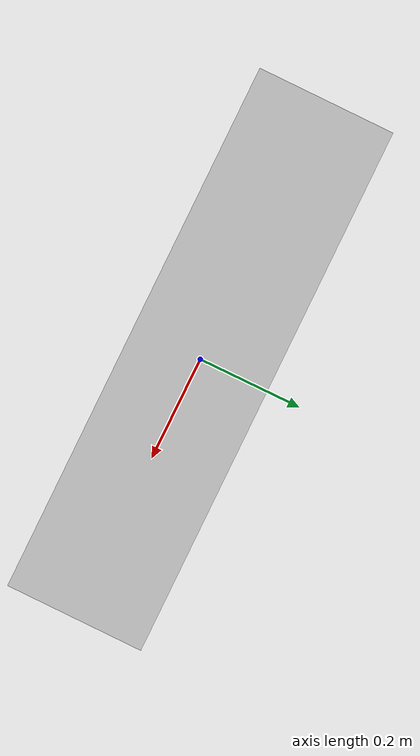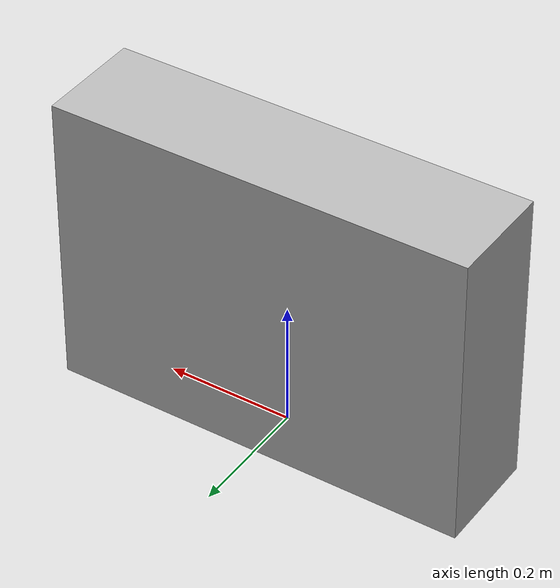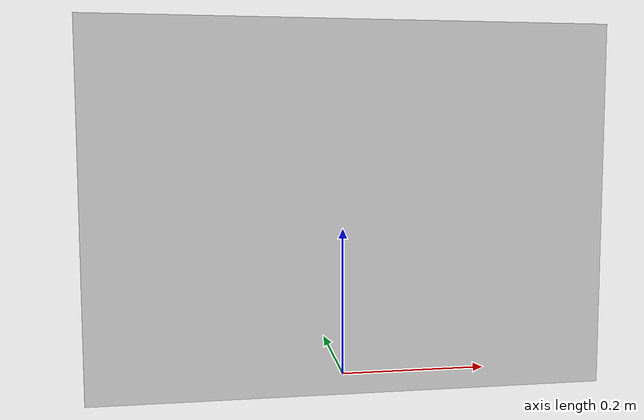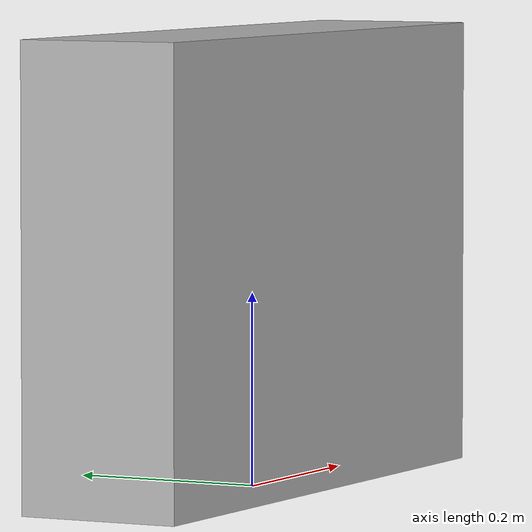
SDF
<?xml version="1.0"?>
<sdf version="1.6">
  <model name="reo2016/suitcase">
    <link name="1_link">
      <collision name="1_col">
        <geometry>
          <box>
            <size>0.66 0.17 0.47</size>
          </box>
        </geometry>
      </collision>
      <visual name="1_vis">
        <geometry>
          <box>
            <size>0.66 0.17 0.47</size>
          </box>
        </geometry>
      </visual>
      <pose>0.0 0.0 0.235 0 0 0</pose>
    </link>
    <static>true</static>
  </model>
</sdf>
